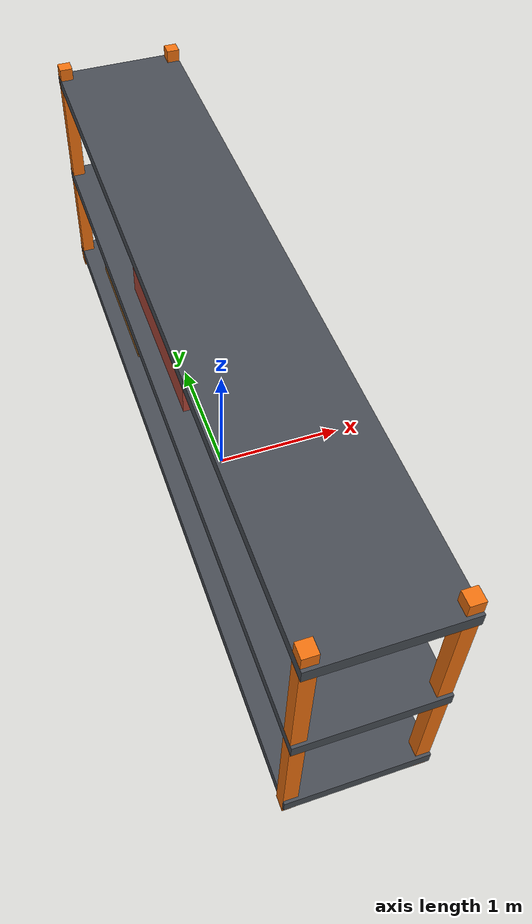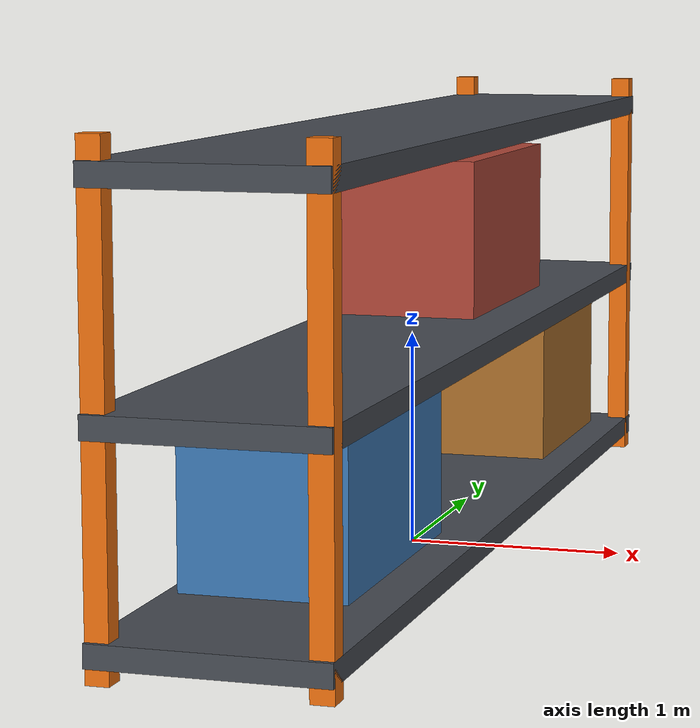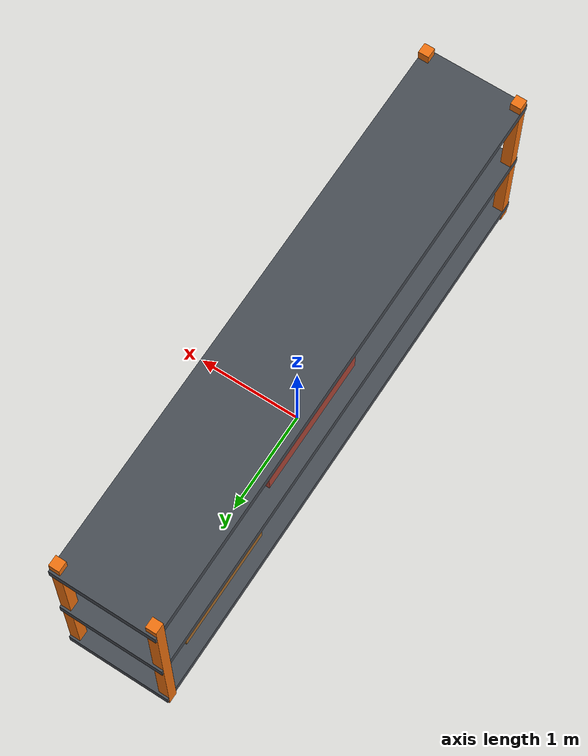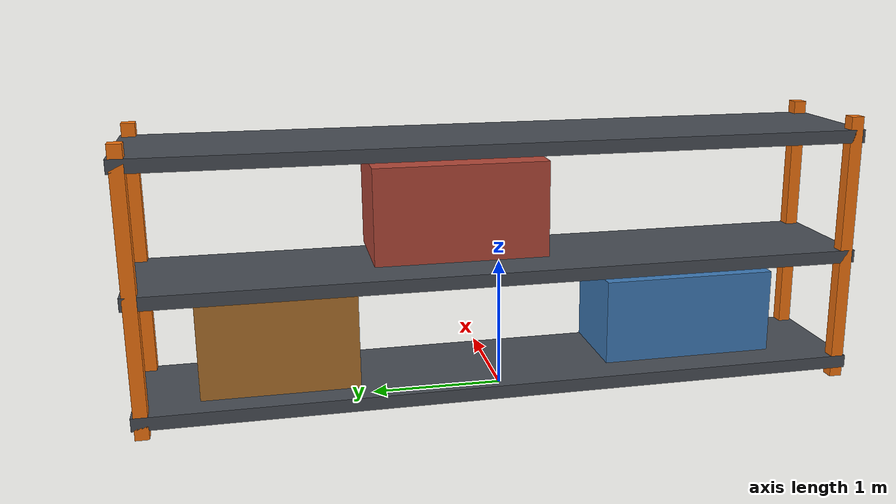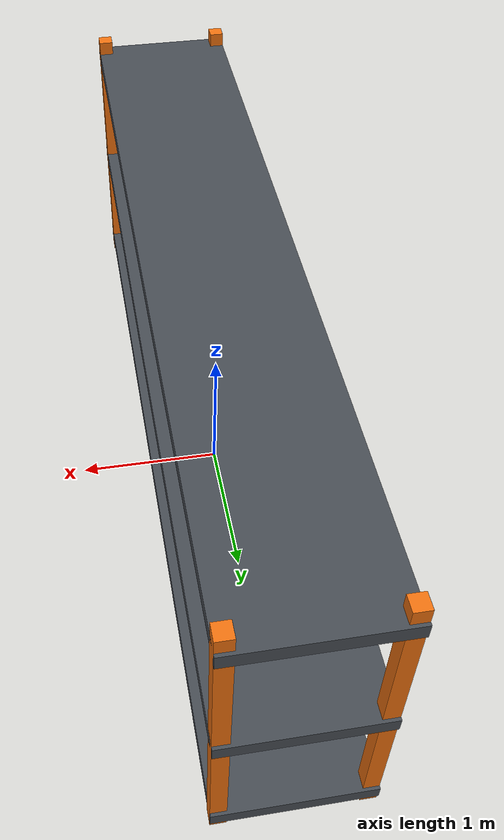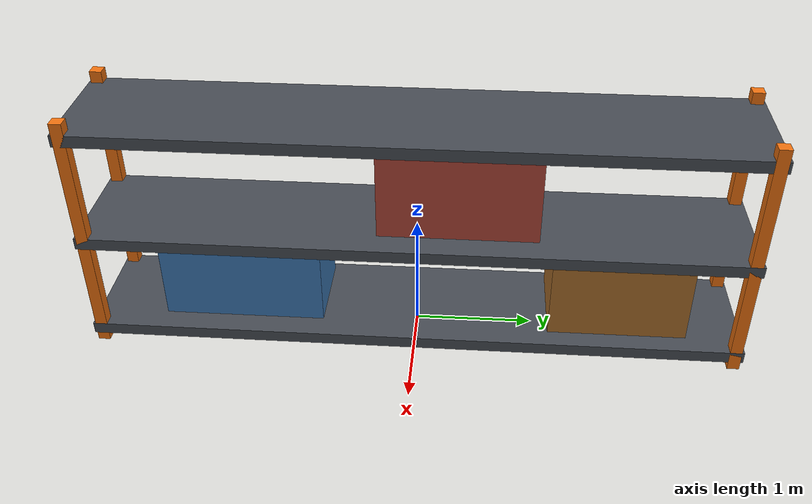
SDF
<?xml version="1.0"?>
<sdf version="1.8">
  <model name="warehouse_rack">
    <static>true</static>
    <link name="rack">
      <collision name="rack_envelope">
        <pose>0 0 1.05 0 0 0</pose>
        <geometry><box><size>1.0 5.5 2.1</size></box></geometry>
      </collision>

      <visual name="shelf_bottom"><pose>0 0 0.12 0 0 0</pose><geometry><box><size>1.0 5.5 0.10</size></box></geometry><material><ambient>0.20 0.22 0.24 1</ambient><diffuse>0.28 0.30 0.33 1</diffuse></material></visual>
      <visual name="shelf_middle"><pose>0 0 1.00 0 0 0</pose><geometry><box><size>1.0 5.5 0.10</size></box></geometry><material><ambient>0.20 0.22 0.24 1</ambient><diffuse>0.28 0.30 0.33 1</diffuse></material></visual>
      <visual name="shelf_top"><pose>0 0 1.95 0 0 0</pose><geometry><box><size>1.0 5.5 0.10</size></box></geometry><material><ambient>0.20 0.22 0.24 1</ambient><diffuse>0.28 0.30 0.33 1</diffuse></material></visual>

      <visual name="post_1"><pose>-0.45 -2.68 1.05 0 0 0</pose><geometry><box><size>0.10 0.10 2.10</size></box></geometry><material><ambient>0.80 0.35 0.04 1</ambient><diffuse>0.95 0.45 0.06 1</diffuse></material></visual>
      <visual name="post_2"><pose>0.45 -2.68 1.05 0 0 0</pose><geometry><box><size>0.10 0.10 2.10</size></box></geometry><material><ambient>0.80 0.35 0.04 1</ambient><diffuse>0.95 0.45 0.06 1</diffuse></material></visual>
      <visual name="post_3"><pose>-0.45 2.68 1.05 0 0 0</pose><geometry><box><size>0.10 0.10 2.10</size></box></geometry><material><ambient>0.80 0.35 0.04 1</ambient><diffuse>0.95 0.45 0.06 1</diffuse></material></visual>
      <visual name="post_4"><pose>0.45 2.68 1.05 0 0 0</pose><geometry><box><size>0.10 0.10 2.10</size></box></geometry><material><ambient>0.80 0.35 0.04 1</ambient><diffuse>0.95 0.45 0.06 1</diffuse></material></visual>

      <visual name="cargo_1"><pose>0 1.70 0.58 0 0 0</pose><geometry><box><size>0.75 1.15 0.75</size></box></geometry><material><ambient>0.48 0.31 0.12 1</ambient><diffuse>0.68 0.44 0.17 1</diffuse></material></visual>
      <visual name="cargo_2"><pose>0 -1.45 0.55 0 0 0</pose><geometry><box><size>0.72 1.35 0.65</size></box></geometry><material><ambient>0.18 0.34 0.52 1</ambient><diffuse>0.24 0.48 0.72 1</diffuse></material></visual>
      <visual name="cargo_3"><pose>0 0.35 1.48 0 0 0</pose><geometry><box><size>0.76 1.30 0.72</size></box></geometry><material><ambient>0.48 0.20 0.16 1</ambient><diffuse>0.70 0.28 0.22 1</diffuse></material></visual>
    </link>
  </model>
</sdf>
